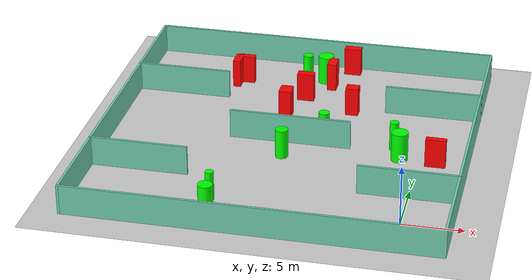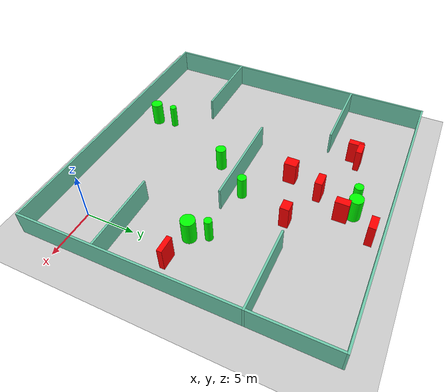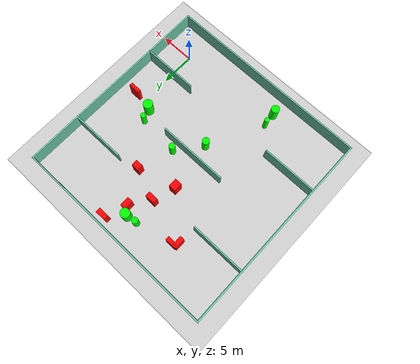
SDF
<sdf version="1.7">
 <world name="default">
  <light name="sun" type="directional">
   <pose>0 0 10 0 -0 0</pose>
   <diffuse>0.8 0.8 0.8 1</diffuse>
   <specular>0.2 0.2 0.2 1</specular>
   <attenuation>
    <range>1000</range>
    <constant>0.9</constant>
    <linear>0.01</linear>
    <quadratic>0.001</quadratic>
   </attenuation>
   <direction>-0.5 0.1 -0.9</direction>
   <spot><inner_angle>0</inner_angle><outer_angle>0</outer_angle><falloff>0</falloff></spot>
  </light>
  <model name="ground_plane">
   <static>1</static>
   <link name="link">
    <collision name="collision">
     <geometry><plane><normal>0 0 1</normal><size>100 100</size></plane></geometry>
     <surface>
      <contact><collide_bitmask>65535</collide_bitmask></contact>
      <friction><ode><mu>100</mu><mu2>50</mu2></ode></friction>
     </surface>
    </collision>
    <visual name="visual">
     <cast_shadows>0</cast_shadows>
     <geometry><plane><normal>0 0 1</normal><size>100 100</size></plane></geometry>
     <material>
      <script><uri>file://media/materials/scripts/gazebo.material</uri><name>Gazebo/Grey</name></script>
     </material>
    </visual>
   </link>
  </model>
  <gravity>0 0 -9.8</gravity>
  <magnetic_field>6e-06 2.3e-05 -4.2e-05</magnetic_field>
  <atmosphere type="adiabatic"/>
  <physics type="ode">
   <max_step_size>0.001</max_step_size>
   <real_time_factor>1</real_time_factor>
   <real_time_update_rate>1000</real_time_update_rate>
  </physics>
  <scene><ambient>0.4 0.4 0.4 1</ambient><background>0.7 0.7 0.7 1</background><shadows>1</shadows></scene>
  <spherical_coordinates>
   <surface_model>EARTH_WGS84</surface_model>
   <latitude_deg>0</latitude_deg>
   <longitude_deg>0</longitude_deg>
   <elevation>0</elevation>
   <heading_deg>0</heading_deg>
  </spherical_coordinates>
  <model name="my_base_walls">
   <link name="Wall_10">
    <collision name="Wall_10_Collision">
     <geometry><box><size>8.2 0.2 2.5</size></box></geometry>
     <pose>0 0 1.25 0 -0 0</pose>
    </collision>
    <visual name="Wall_10_Visual">
     <pose>0 0 1.25 0 -0 0</pose>
     <geometry><box><size>8.2 0.2 2.5</size></box></geometry>
     <material>
      <script><uri>file://media/materials/scripts/gazebo.material</uri><name>Gazebo/Grey</name></script>
      <ambient>0.435294 0.796078 0.67451 1</ambient>
     </material>
     <meta><layer>0</layer></meta>
    </visual>
    <pose>-11 -7 0 0 -0 0</pose>
   </link>
   <link name="Wall_12">
    <collision name="Wall_12_Collision">
     <geometry><box><size>8.2 0.2 2.5</size></box></geometry>
     <pose>0 0 1.25 0 -0 0</pose>
    </collision>
    <visual name="Wall_12_Visual">
     <pose>0 0 1.25 0 -0 0</pose>
     <geometry><box><size>8.2 0.2 2.5</size></box></geometry>
     <material>
      <script><uri>file://media/materials/scripts/gazebo.material</uri><name>Gazebo/Grey</name></script>
      <ambient>0.435294 0.796078 0.67451 1</ambient>
     </material>
     <meta><layer>0</layer></meta>
    </visual>
    <pose>-11 7 0 0 -0 0</pose>
   </link>
   <link name="Wall_14">
    <collision name="Wall_14_Collision">
     <geometry><box><size>8.2 0.2 2.5</size></box></geometry>
     <pose>0 0 1.25 0 -0 0</pose>
    </collision>
    <visual name="Wall_14_Visual">
     <pose>0 0 1.25 0 -0 0</pose>
     <geometry><box><size>8.2 0.2 2.5</size></box></geometry>
     <material>
      <script><uri>file://media/materials/scripts/gazebo.material</uri><name>Gazebo/Grey</name></script>
      <ambient>0.435294 0.796078 0.67451 1</ambient>
     </material>
     <meta><layer>0</layer></meta>
    </visual>
    <pose>11 7 0 0 -0 3.14159</pose>
   </link>
   <link name="Wall_16">
    <collision name="Wall_16_Collision">
     <geometry><box><size>10.2 0.2 2.5</size></box></geometry>
     <pose>0 0 1.25 0 -0 0</pose>
    </collision>
    <visual name="Wall_16_Visual">
     <pose>0 0 1.25 0 -0 0</pose>
     <geometry><box><size>10.2 0.2 2.5</size></box></geometry>
     <material>
      <script><uri>file://media/materials/scripts/gazebo.material</uri><name>Gazebo/Grey</name></script>
      <ambient>0.435294 0.796078 0.67451 1</ambient>
     </material>
     <meta><layer>0</layer></meta>
    </visual>
    <pose>0 0 0 0 -0 3.14159</pose>
   </link>
   <link name="Wall_2">
    <collision name="Wall_2_Collision">
     <geometry><box><size>30.2 0.2 2.5</size></box></geometry>
     <pose>0 0 1.25 0 -0 0</pose>
    </collision>
    <visual name="Wall_2_Visual">
     <pose>0 0 1.25 0 -0 0</pose>
     <geometry><box><size>30.2 0.2 2.5</size></box></geometry>
     <material>
      <script><uri>file://media/materials/scripts/gazebo.material</uri><name>Gazebo/Grey</name></script>
      <ambient>0.435294 0.796078 0.67451 1</ambient>
     </material>
     <meta><layer>0</layer></meta>
    </visual>
    <pose>0 -15 0 0 -0 3.14159</pose>
   </link>
   <link name="Wall_3">
    <collision name="Wall_3_Collision">
     <geometry><box><size>30.2 0.2 2.5</size></box></geometry>
     <pose>0 0 1.25 0 -0 0</pose>
    </collision>
    <visual name="Wall_3_Visual">
     <pose>0 0 1.25 0 -0 0</pose>
     <geometry><box><size>30.2 0.2 2.5</size></box></geometry>
     <material>
      <script><uri>file://media/materials/scripts/gazebo.material</uri><name>Gazebo/Grey</name></script>
      <ambient>0.435294 0.796078 0.67451 1</ambient>
     </material>
     <meta><layer>0</layer></meta>
    </visual>
    <pose>-15 0 0 0 -0 1.5708</pose>
   </link>
   <link name="Wall_4">
    <collision name="Wall_4_Collision">
     <geometry><box><size>30.2 0.2 2.5</size></box></geometry>
     <pose>0 0 1.25 0 -0 0</pose>
    </collision>
    <visual name="Wall_4_Visual">
     <pose>0 0 1.25 0 -0 0</pose>
     <geometry><box><size>30.2 0.2 2.5</size></box></geometry>
     <material>
      <script><uri>file://media/materials/scripts/gazebo.material</uri><name>Gazebo/Grey</name></script>
      <ambient>0.435294 0.796078 0.67451 1</ambient>
     </material>
     <meta><layer>0</layer></meta>
    </visual>
    <pose>0 15 0 0 -0 0</pose>
   </link>
   <link name="Wall_6">
    <collision name="Wall_6_Collision">
     <geometry><box><size>30.2 0.2 2.5</size></box></geometry>
     <pose>0 0 1.25 0 -0 0</pose>
    </collision>
    <visual name="Wall_6_Visual">
     <pose>0 0 1.25 0 -0 0</pose>
     <geometry><box><size>30.2 0.2 2.5</size></box></geometry>
     <material>
      <script><uri>file://media/materials/scripts/gazebo.material</uri><name>Gazebo/Grey</name></script>
      <ambient>0.435294 0.796078 0.67451 1</ambient>
     </material>
     <meta><layer>0</layer></meta>
    </visual>
    <pose>15 0 0 0 -0 1.5708</pose>
   </link>
   <link name="Wall_8">
    <collision name="Wall_8_Collision">
     <geometry><box><size>8.2 0.2 2.5</size></box></geometry>
     <pose>0 0 1.25 0 -0 0</pose>
    </collision>
    <visual name="Wall_8_Visual">
     <pose>0 0 1.25 0 -0 0</pose>
     <geometry><box><size>8.2 0.2 2.5</size></box></geometry>
     <material>
      <script><uri>file://media/materials/scripts/gazebo.material</uri><name>Gazebo/Grey</name></script>
      <ambient>0.435294 0.796078 0.67451 1</ambient>
     </material>
     <meta><layer>0</layer></meta>
    </visual>
    <pose>11 -7 0 0 -0 3.14159</pose>
   </link>
   <static>1</static>
   <pose>-11 11 0 0 -0 0</pose>
  </model>
  <model name="cylinder1">
   <static>1</static>
   <link name="link">
    <inertial>
     <mass>1</mass>
     <inertia><ixx>0.5</ixx><ixy>0</ixy><ixz>0</ixz><iyy>0.5</iyy><iyz>0</iyz><izz>1</izz></inertia>
    </inertial>
    <collision name="collision">
     <geometry><cylinder><radius>0.520962413194167</radius><length>2.5</length></cylinder></geometry>
    </collision>
    <visual name="visual">
     <geometry><cylinder><radius>0.520962413194167</radius><length>2.5</length></cylinder></geometry>
     <material>
      <ambient>0 1 0 1</ambient>
      <diffuse>0 1 0 1</diffuse>
      <specular>0.1 0.1 0.1 1</specular>
      <emissive>0 0 0 0</emissive>
     </material>
    </visual>
   </link>
   <pose>-11.160634053380802 8.539254308041231 1.25 0 0 0</pose>
  </model>
  <model name="cylinder2">
   <static>1</static>
   <link name="link">
    <inertial>
     <mass>1</mass>
     <inertia><ixx>0.5</ixx><ixy>0</ixy><ixz>0</ixz><iyy>0.5</iyy><iyz>0</iyz><izz>1</izz></inertia>
    </inertial>
    <collision name="collision">
     <geometry><cylinder><radius>0.6847442961219714</radius><length>2.5</length></cylinder></geometry>
    </collision>
    <visual name="visual">
     <geometry><cylinder><radius>0.6847442961219714</radius><length>2.5</length></cylinder></geometry>
     <material>
      <ambient>0 1 0 1</ambient>
      <diffuse>0 1 0 1</diffuse>
      <specular>0.1 0.1 0.1 1</specular>
      <emissive>0 0 0 0</emissive>
     </material>
    </visual>
   </link>
   <pose>-10.26473332219072 22.81666162381057 1.25 0 0 0</pose>
  </model>
  <model name="cylinder3">
   <static>1</static>
   <link name="link">
    <inertial>
     <mass>1</mass>
     <inertia><ixx>0.5</ixx><ixy>0</ixy><ixz>0</ixz><iyy>0.5</iyy><iyz>0</iyz><izz>1</izz></inertia>
    </inertial>
    <collision name="collision">
     <geometry><cylinder><radius>0.5981613326715292</radius><length>2.5</length></cylinder></geometry>
    </collision>
    <visual name="visual">
     <geometry><cylinder><radius>0.5981613326715292</radius><length>2.5</length></cylinder></geometry>
     <material>
      <ambient>0 1 0 1</ambient>
      <diffuse>0 1 0 1</diffuse>
      <specular>0.1 0.1 0.1 1</specular>
      <emissive>0 0 0 0</emissive>
     </material>
    </visual>
   </link>
   <pose>-14.967161464786262 -1.431216429215267 1.25 0 0 0</pose>
  </model>
  <model name="cylinder4">
   <static>1</static>
   <link name="link">
    <inertial>
     <mass>1</mass>
     <inertia><ixx>0.5</ixx><ixy>0</ixy><ixz>0</ixz><iyy>0.5</iyy><iyz>0</iyz><izz>1</izz></inertia>
    </inertial>
    <collision name="collision">
     <geometry><cylinder><radius>0.44708674857763975</radius><length>2.5</length></cylinder></geometry>
    </collision>
    <visual name="visual">
     <geometry><cylinder><radius>0.44708674857763975</radius><length>2.5</length></cylinder></geometry>
     <material>
      <ambient>0 1 0 1</ambient>
      <diffuse>0 1 0 1</diffuse>
      <specular>0.1 0.1 0.1 1</specular>
      <emissive>0 0 0 0</emissive>
     </material>
    </visual>
   </link>
   <pose>-11.82280411536869 22.626255628069877 1.25 0 0 0</pose>
  </model>
  <model name="cylinder5">
   <static>1</static>
   <link name="link">
    <inertial>
     <mass>1</mass>
     <inertia><ixx>0.5</ixx><ixy>0</ixy><ixz>0</ixz><iyy>0.5</iyy><iyz>0</iyz><izz>1</izz></inertia>
    </inertial>
    <collision name="collision">
     <geometry><cylinder><radius>0.3522555579025229</radius><length>2.5</length></cylinder></geometry>
    </collision>
    <visual name="visual">
     <geometry><cylinder><radius>0.3522555579025229</radius><length>2.5</length></cylinder></geometry>
     <material>
      <ambient>0 1 0 1</ambient>
      <diffuse>0 1 0 1</diffuse>
      <specular>0.1 0.1 0.1 1</specular>
      <emissive>0 0 0 0</emissive>
     </material>
    </visual>
   </link>
   <pose>-15.160015485983234 0.5636808333128047 1.25 0 0 0</pose>
  </model>
  <model name="cylinder6">
   <static>1</static>
   <link name="link">
    <inertial>
     <mass>1</mass>
     <inertia><ixx>0.5</ixx><ixy>0</ixy><ixz>0</ixz><iyy>0.5</iyy><iyz>0</iyz><izz>1</izz></inertia>
    </inertial>
    <collision name="collision">
     <geometry><cylinder><radius>0.45434682442099794</radius><length>2.5</length></cylinder></geometry>
    </collision>
    <visual name="visual">
     <geometry><cylinder><radius>0.45434682442099794</radius><length>2.5</length></cylinder></geometry>
     <material>
      <ambient>0 1 0 1</ambient>
      <diffuse>0 1 0 1</diffuse>
      <specular>0.1 0.1 0.1 1</specular>
      <emissive>0 0 0 0</emissive>
     </material>
    </visual>
   </link>
   <pose>-8.343614539301985 12.176185356749652 1.25 0 0 0</pose>
  </model>
  <model name="cylinder7">
   <static>1</static>
   <link name="link">
    <inertial>
     <mass>1</mass>
     <inertia><ixx>0.5</ixx><ixy>0</ixy><ixz>0</ixz><iyy>0.5</iyy><iyz>0</iyz><izz>1</izz></inertia>
    </inertial>
    <collision name="collision">
     <geometry><cylinder><radius>0.6998760567390652</radius><length>2.5</length></cylinder></geometry>
    </collision>
    <visual name="visual">
     <geometry><cylinder><radius>0.6998760567390652</radius><length>2.5</length></cylinder></geometry>
     <material>
      <ambient>0 1 0 1</ambient>
      <diffuse>0 1 0 1</diffuse>
      <specular>0.1 0.1 0.1 1</specular>
      <emissive>0 0 0 0</emissive>
     </material>
    </visual>
   </link>
   <pose>-1.6513930295782977 10.040892817024394 1.25 0 0 0</pose>
  </model>
  <model name="cylinder8">
   <static>1</static>
   <link name="link">
    <inertial>
     <mass>1</mass>
     <inertia><ixx>0.5</ixx><ixy>0</ixy><ixz>0</ixz><iyy>0.5</iyy><iyz>0</iyz><izz>1</izz></inertia>
    </inertial>
    <collision name="collision">
     <geometry><cylinder><radius>0.3805012475370666</radius><length>2.5</length></cylinder></geometry>
    </collision>
    <visual name="visual">
     <geometry><cylinder><radius>0.3805012475370666</radius><length>2.5</length></cylinder></geometry>
     <material>
      <ambient>0 1 0 1</ambient>
      <diffuse>0 1 0 1</diffuse>
      <specular>0.1 0.1 0.1 1</specular>
      <emissive>0 0 0 0</emissive>
     </material>
    </visual>
   </link>
   <pose>-2.3596491679393345 11.679062244817224 1.25 0 0 0</pose>
  </model>
  <model name="box1">
   <static>1</static>
   <link name="link">
    <inertial>
     <mass>1</mass>
     <inertia><ixx>0.083</ixx><ixy>0</ixy><ixz>0</ixz><iyy>0.083</iyy><iyz>0</iyz><izz>0.083</izz></inertia>
    </inertial>
    <collision name="collision">
     <geometry><box><size>0.7892034813846309 1.3703634723020472 2.5</size></box></geometry>
    </collision>
    <visual name="visual">
     <geometry><box><size>0.7892034813846309 1.3703634723020472 2.5</size></box></geometry>
     <material>
      <ambient>1 0 0 1</ambient>
      <diffuse>1 0 0 1</diffuse>
      <specular>0.1 0.1 0.1 1</specular>
      <emissive>0 0 0 0</emissive>
     </material>
    </visual>
    <sensor name="my_contact" type="contact">
     <contact><collision>box_collision</collision><topic>__default_topic__</topic></contact>
    </sensor>
   </link>
   <pose>-9.448046605508548 21.77228108935565 1.25 0 0 0</pose>
  </model>
  <model name="box2">
   <static>1</static>
   <link name="link">
    <inertial>
     <mass>1</mass>
     <inertia><ixx>0.083</ixx><ixy>0</ixy><ixz>0</ixz><iyy>0.083</iyy><iyz>0</iyz><izz>0.083</izz></inertia>
    </inertial>
    <collision name="collision">
     <geometry><box><size>1.4505631931220124 0.7388446317295259 2.5</size></box></geometry>
    </collision>
    <visual name="visual">
     <geometry><box><size>1.4505631931220124 0.7388446317295259 2.5</size></box></geometry>
     <material>
      <ambient>1 0 0 1</ambient>
      <diffuse>1 0 0 1</diffuse>
      <specular>0.1 0.1 0.1 1</specular>
      <emissive>0 0 0 0</emissive>
     </material>
    </visual>
    <sensor name="my_contact" type="contact">
     <contact><collision>box_collision</collision><topic>__default_topic__</topic></contact>
    </sensor>
   </link>
   <pose>-11.300279655075625 19.040040774443607 1.25 0 0 0</pose>
  </model>
  <model name="box3">
   <static>1</static>
   <link name="link">
    <inertial>
     <mass>1</mass>
     <inertia><ixx>0.083</ixx><ixy>0</ixy><ixz>0</ixz><iyy>0.083</iyy><iyz>0</iyz><izz>0.083</izz></inertia>
    </inertial>
    <collision name="collision">
     <geometry><box><size>1.4475744848641867 0.5834978921165102 2.5</size></box></geometry>
    </collision>
    <visual name="visual">
     <geometry><box><size>1.4475744848641867 0.5834978921165102 2.5</size></box></geometry>
     <material>
      <ambient>1 0 0 1</ambient>
      <diffuse>1 0 0 1</diffuse>
      <specular>0.1 0.1 0.1 1</specular>
      <emissive>0 0 0 0</emissive>
     </material>
    </visual>
    <sensor name="my_contact" type="contact">
     <contact><collision>box_collision</collision><topic>__default_topic__</topic></contact>
    </sensor>
   </link>
   <pose>-17.13502967657435 21.373009312211426 1.25 0 0 0</pose>
  </model>
  <model name="box4">
   <static>1</static>
   <link name="link">
    <inertial>
     <mass>1</mass>
     <inertia><ixx>0.083</ixx><ixy>0</ixy><ixz>0</ixz><iyy>0.083</iyy><iyz>0</iyz><izz>0.083</izz></inertia>
    </inertial>
    <collision name="collision">
     <geometry><box><size>1.6838724169718586 0.5072418232103443 2.5</size></box></geometry>
    </collision>
    <visual name="visual">
     <geometry><box><size>1.6838724169718586 0.5072418232103443 2.5</size></box></geometry>
     <material>
      <ambient>1 0 0 1</ambient>
      <diffuse>1 0 0 1</diffuse>
      <specular>0.1 0.1 0.1 1</specular>
      <emissive>0 0 0 0</emissive>
     </material>
    </visual>
    <sensor name="my_contact" type="contact">
     <contact><collision>box_collision</collision><topic>__default_topic__</topic></contact>
    </sensor>
   </link>
   <pose>1.3756403314737646 9.523289148021583 1.25 0 0 0</pose>
  </model>
  <model name="box5">
   <static>1</static>
   <link name="link">
    <inertial>
     <mass>1</mass>
     <inertia><ixx>0.083</ixx><ixy>0</ixy><ixz>0</ixz><iyy>0.083</iyy><iyz>0</iyz><izz>0.083</izz></inertia>
    </inertial>
    <collision name="collision">
     <geometry><box><size>1.4761405504746972 0.7186673680164799 2.5</size></box></geometry>
    </collision>
    <visual name="visual">
     <geometry><box><size>1.4761405504746972 0.7186673680164799 2.5</size></box></geometry>
     <material>
      <ambient>1 0 0 1</ambient>
      <diffuse>1 0 0 1</diffuse>
      <specular>0.1 0.1 0.1 1</specular>
      <emissive>0 0 0 0</emissive>
     </material>
    </visual>
    <sensor name="my_contact" type="contact">
     <contact><collision>box_collision</collision><topic>__default_topic__</topic></contact>
    </sensor>
   </link>
   <pose>-8.194516927274906 24.891256412742653 1.25 0 0 0</pose>
  </model>
  <model name="box6">
   <static>1</static>
   <link name="link">
    <inertial>
     <mass>1</mass>
     <inertia><ixx>0.083</ixx><ixy>0</ixy><ixz>0</ixz><iyy>0.083</iyy><iyz>0</iyz><izz>0.083</izz></inertia>
    </inertial>
    <collision name="collision">
     <geometry><box><size>0.6566360554087749 1.5092941833031375 2.5</size></box></geometry>
    </collision>
    <visual name="visual">
     <geometry><box><size>0.6566360554087749 1.5092941833031375 2.5</size></box></geometry>
     <material>
      <ambient>1 0 0 1</ambient>
      <diffuse>1 0 0 1</diffuse>
      <specular>0.1 0.1 0.1 1</specular>
      <emissive>0 0 0 0</emissive>
     </material>
    </visual>
    <sensor name="my_contact" type="contact">
     <contact><collision>box_collision</collision><topic>__default_topic__</topic></contact>
    </sensor>
   </link>
   <pose>-17.78429769995966 20.809736894810012 1.25 0 0 0</pose>
  </model>
  <model name="box7">
   <static>1</static>
   <link name="link">
    <inertial>
     <mass>1</mass>
     <inertia><ixx>0.083</ixx><ixy>0</ixy><ixz>0</ixz><iyy>0.083</iyy><iyz>0</iyz><izz>0.083</izz></inertia>
    </inertial>
    <collision name="collision">
     <geometry><box><size>1.1037085393126234 0.9033532360166081 2.5</size></box></geometry>
    </collision>
    <visual name="visual">
     <geometry><box><size>1.1037085393126234 0.9033532360166081 2.5</size></box></geometry>
     <material>
      <ambient>1 0 0 1</ambient>
      <diffuse>1 0 0 1</diffuse>
      <specular>0.1 0.1 0.1 1</specular>
      <emissive>0 0 0 0</emissive>
     </material>
    </visual>
    <sensor name="my_contact" type="contact">
     <contact><collision>box_collision</collision><topic>__default_topic__</topic></contact>
    </sensor>
   </link>
   <pose>-6.872791983729886 17.249027277327855 1.25 0 0 0</pose>
  </model>
  <model name="box8">
   <static>1</static>
   <link name="link">
    <inertial>
     <mass>1</mass>
     <inertia><ixx>0.083</ixx><ixy>0</ixy><ixz>0</ixz><iyy>0.083</iyy><iyz>0</iyz><izz>0.083</izz></inertia>
    </inertial>
    <collision name="collision">
     <geometry><box><size>1.0510047957281332 1.2567691112224 2.5</size></box></geometry>
    </collision>
    <visual name="visual">
     <geometry><box><size>1.0510047957281332 1.2567691112224 2.5</size></box></geometry>
     <material>
      <ambient>1 0 0 1</ambient>
      <diffuse>1 0 0 1</diffuse>
      <specular>0.1 0.1 0.1 1</specular>
      <emissive>0 0 0 0</emissive>
     </material>
    </visual>
    <sensor name="my_contact" type="contact">
     <contact><collision>box_collision</collision><topic>__default_topic__</topic></contact>
    </sensor>
   </link>
   <pose>-12.365387165422591 15.737044161356742 1.25 0 0 0</pose>
  </model>
 </world>
</sdf>
